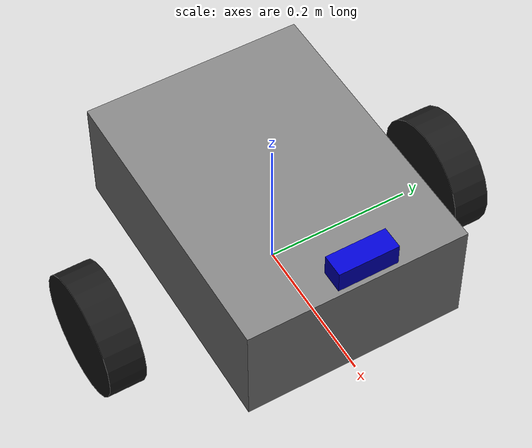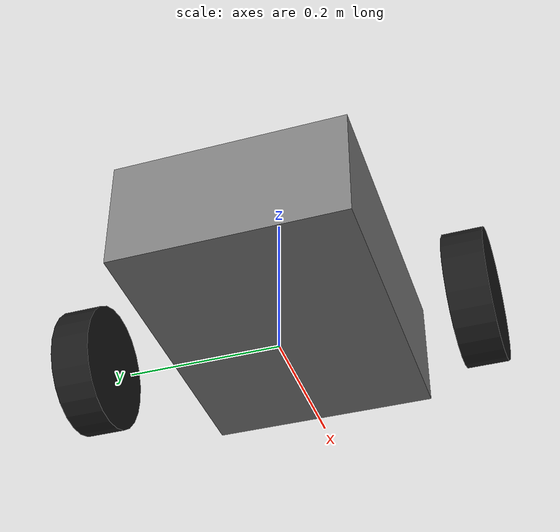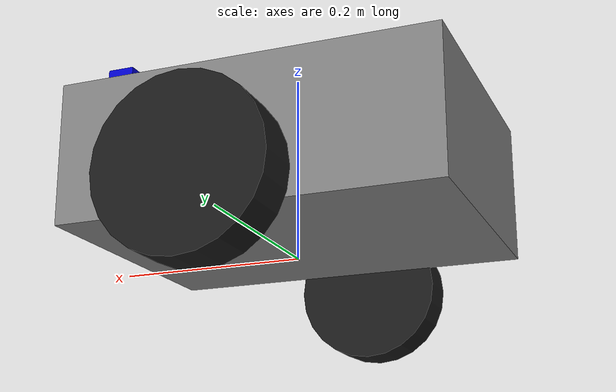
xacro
<?xml version="1.0"?>
<robot xmlns:xacro="http://www.ros.org/wiki/xacro" name="autocode_bot">

  <!-- Robot parameters -->
  <xacro:property name="wheel_radius" value="0.0825"/>  <!-- 6.5" hoverboard wheel -->
  <xacro:property name="wheel_width" value="0.05"/>
  <xacro:property name="wheel_separation" value="0.5"/>
  <xacro:property name="chassis_length" value="0.4"/>
  <xacro:property name="chassis_width" value="0.3"/>
  <xacro:property name="chassis_height" value="0.15"/>
  <xacro:property name="camera_baseline" value="0.06"/>  <!-- 60mm stereo baseline -->

  <!-- Base footprint (ground plane) -->
  <link name="base_footprint"/>

  <!-- Base link (chassis) -->
  <link name="base_link">
    <visual>
      <geometry>
        <box size="${chassis_length} ${chassis_width} ${chassis_height}"/>
      </geometry>
      <material name="grey">
        <color rgba="0.5 0.5 0.5 1.0"/>
      </material>
    </visual>
    <collision>
      <geometry>
        <box size="${chassis_length} ${chassis_width} ${chassis_height}"/>
      </geometry>
    </collision>
    <inertial>
      <mass value="5.0"/>
      <inertia ixx="0.1" ixy="0" ixz="0" iyy="0.1" iyz="0" izz="0.1"/>
    </inertial>
  </link>

  <joint name="base_footprint_joint" type="fixed">
    <parent link="base_footprint"/>
    <child link="base_link"/>
    <origin xyz="0 0 ${wheel_radius + 0.01}" rpy="0 0 0"/>
  </joint>

  <!-- Left wheel -->
  <link name="left_wheel">
    <visual>
      <geometry>
        <cylinder radius="${wheel_radius}" length="${wheel_width}"/>
      </geometry>
      <material name="black">
        <color rgba="0.1 0.1 0.1 1.0"/>
      </material>
    </visual>
    <collision>
      <geometry>
        <cylinder radius="${wheel_radius}" length="${wheel_width}"/>
      </geometry>
    </collision>
    <inertial>
      <mass value="2.0"/>
      <inertia ixx="0.01" ixy="0" ixz="0" iyy="0.01" iyz="0" izz="0.02"/>
    </inertial>
  </link>

  <joint name="left_wheel_joint" type="continuous">
    <parent link="base_link"/>
    <child link="left_wheel"/>
    <origin xyz="0 ${wheel_separation/2} ${-chassis_height/2}" rpy="${-pi/2} 0 0"/>
    <axis xyz="0 0 1"/>
  </joint>

  <!-- Right wheel -->
  <link name="right_wheel">
    <visual>
      <geometry>
        <cylinder radius="${wheel_radius}" length="${wheel_width}"/>
      </geometry>
      <material name="black">
        <color rgba="0.1 0.1 0.1 1.0"/>
      </material>
    </visual>
    <collision>
      <geometry>
        <cylinder radius="${wheel_radius}" length="${wheel_width}"/>
      </geometry>
    </collision>
    <inertial>
      <mass value="2.0"/>
      <inertia ixx="0.01" ixy="0" ixz="0" iyy="0.01" iyz="0" izz="0.02"/>
    </inertial>
  </link>

  <joint name="right_wheel_joint" type="continuous">
    <parent link="base_link"/>
    <child link="right_wheel"/>
    <origin xyz="0 ${-wheel_separation/2} ${-chassis_height/2}" rpy="${-pi/2} 0 0"/>
    <axis xyz="0 0 1"/>
  </joint>

  <!-- Stereo camera -->
  <link name="camera_link">
    <visual>
      <geometry>
        <box size="0.03 0.08 0.03"/>
      </geometry>
      <material name="blue">
        <color rgba="0.0 0.0 0.8 1.0"/>
      </material>
    </visual>
  </link>

  <joint name="camera_joint" type="fixed">
    <parent link="base_link"/>
    <child link="camera_link"/>
    <origin xyz="${chassis_length/2} 0 ${chassis_height/2 + 0.05}" rpy="0 0 0"/>
  </joint>

  <!-- Camera optical frames -->
  <link name="camera_left_optical"/>
  <link name="camera_right_optical"/>

  <joint name="camera_left_optical_joint" type="fixed">
    <parent link="camera_link"/>
    <child link="camera_left_optical"/>
    <origin xyz="0 ${camera_baseline/2} 0" rpy="${-pi/2} 0 ${-pi/2}"/>
  </joint>

  <joint name="camera_right_optical_joint" type="fixed">
    <parent link="camera_link"/>
    <child link="camera_right_optical"/>
    <origin xyz="0 ${-camera_baseline/2} 0" rpy="${-pi/2} 0 ${-pi/2}"/>
  </joint>

  <!-- IMU -->
  <link name="imu_link"/>

  <joint name="imu_joint" type="fixed">
    <parent link="camera_link"/>
    <child link="imu_link"/>
    <origin xyz="0 0 0" rpy="0 0 0"/>
  </joint>

</robot>
